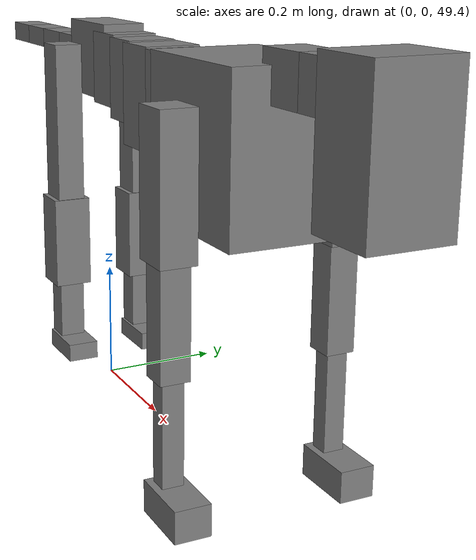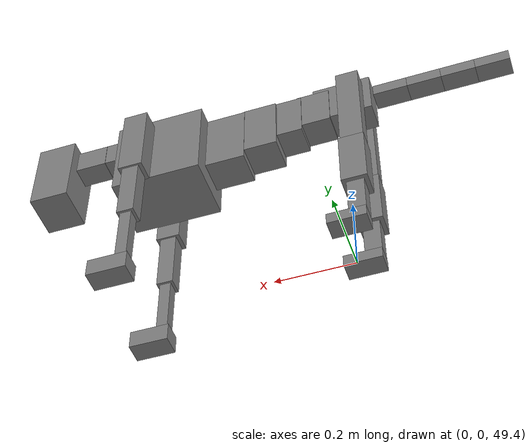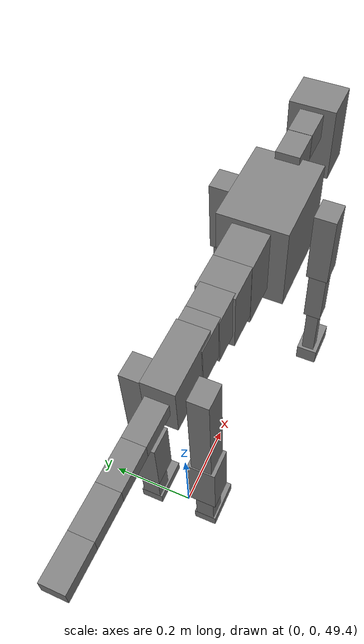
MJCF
<mujoco model="dog">

    <default>
        <joint armature="0.02" stiffness="1" damping="0.2" limited="true"/>
        <geom condim="3" friction="1 0.05 0.05" margin="0.01"/>
        <motor ctrllimited="true" ctrlrange="-1.0 1.0" forcelimited="true" gear="50"/>
    </default>

    <compiler inertiafromgeom="true" angle="radian"/>

    <option timestep="0.016" iterations="50" tolerance="1e-10" solver="Newton" jacobian="dense" cone="pyramidal"/>

    <size nconmax="20000" njmax="60000" nstack="5000000"/>
    <visual>
        <map force="0.1" zfar="30"/>
        <rgba haze="0.15 0.25 0.35 1"/>
        <quality shadowsize="2048"/>
        <global offwidth="800" offheight="800"/>
    </visual>

    <asset>
        <texture type="skybox" builtin="gradient" rgb1="0.3 0.5 0.7" rgb2="0 0 0" width="512" height="512"/>
        <texture name="texplane" type="2d" builtin="checker" rgb1=".2 .3 .4" rgb2=".1 0.15 0.2" width="512" height="512"
                 mark="cross" markrgb=".8 .8 .8"/>
        <texture name="texgeom" type="cube" builtin="flat" mark="cross" width="127" height="1278" rgb1="0.8 0.6 0.4"
                 rgb2="0.8 0.6 0.4" markrgb="1 1 1" random="0.01"/>

        <material name="matplane" reflectance="0.3" texture="texplane" texrepeat="1 1" texuniform="true"/>
        <material name="matgeom" texture="texgeom" texuniform="true" rgba="0.8 0.6 .4 1"/>
    </asset>

    <worldbody>
        <geom name="floor" pos="0 0 0" size="0 0 .25" type="plane" material="matplane" condim="3"/>

        <light directional="false" diffuse=".2 .2 .2" specular="0 0 0" pos="0 0 5" dir="0 0 -1" castshadow="false"/>
        <light mode="targetbodycom" target="torso" directional="false" diffuse=".8 .8 .8" specular="0.3 0.3 0.3"
               pos="0 0 4.0" dir="0 0 -1"/>

        <body name="root" pos="0 0 50">
            <freejoint name="root_1"/>
            <geom type="box" pos="0 0 -0.02" size="0.0774  0.0358  0.063" density="2030"/>

            <body name="spine1" pos="0.054 0 0">
                <joint name="spine1_y" axis="0 1 0" range="0 0.7" limited="true"/>
                <geom type="box" pos="0.02375 0 -0.03" size="0.04375  0.0375  0.05985" density="2030"/>

                <body name="spine2" pos="0.0612 0 0">
                    <joint name="spine2_y" axis="0 1 0" range="-0.15 0.15" limited="true"/>
                    <geom type="box" pos="0.03555  0  -0.04" size="0.04055  0.039  0.06615" density="2030"/>

                    <body name="spine3" pos="0.0730 0 0">
                        <joint name="spine3_y" axis="0 1 0" range="-0.15 0.15" limited="true"/>
                        <geom type="box" pos="0.03555  0  -0.057" size="0.04555  0.0445  0.081" density="2030"/>

                        <body name="spine4" pos="0.0780 0 0">
                            <joint name="spine4_y" axis="0 1 0" range="-0.15 0.15" limited="true"/>
                            <geom type="box" pos="0.05265  0  -0.07" size="0.05265  0.045  0.09135" density="2030"/>

                            <body name="torso" pos="0.1082 0 0">
                                <joint name="torso_y" axis="0 1 0" range="-0.15 0.15" limited="true"/>
                                <geom type="box" pos="0.11925  0  -0.085" size="0.11925  0.085  0.11745"
                                      density="2030"/>

                                <body name="neck1" pos="0.2160  0   0.0180">
                                    <joint name="neck1_y" axis="0 1 0" range="-1.2  -1" limited="true"/>
                                    <geom type="box" pos="0.0423  0  0" size="0.0423  0.03  0.036" density="2325"/>

                                    <body name="neck2" pos="0.0853  0  0">
                                        <joint name="neck2_y" axis="0 1 0" range="0.1  0" limited="true"/>
                                        <geom type="box" pos="0.0423  0  0" size="0.0423  0.03  0.036" density="2325"/>

                                        <body name="head" pos="0.0853  0  0">
                                            <joint name="head_y" axis="0 1 0" range="-0.3  -0.2" limited="true"/>
                                            <geom type="box" pos="0.0531  0  -0.055" size="0.0531  0.06  0.1044"
                                                  density="4030"/>

                                        </body>
                                    </body>
                                </body>

                                <body name="front_shoulder" pos="0.156  0   -0.0480">
                                    <joint name="front_shoulder_y" axis="0 1 0" range="-1 1.5" limited="true"/>
                                    <geom type="box" pos="0 0.13 -0.0771" size="0.0319  0.0273  0.1037" density="1158"/>
                                    <geom type="box" pos="0 -0.13 -0.0771" size="0.0319  0.0273  0.1037"
                                          density="1158"/>

                                    <body name="front_elbow" pos="0  0  -0.1541">
                                        <joint name="front_elbow_y" axis="0 1 0" range="-2 0" limited="true"/>
                                        <geom type="box" pos="0 0.13 -0.0953" size="0.0219  0.0224  0.0953"
                                              density="1081"/>
                                        <geom type="box" pos="0 -0.13 -0.0953" size="0.0219  0.0224  0.0953"
                                              density="1081"/>

                                        <body name="front_wrist" pos="0  0  -0.1906">
                                            <joint name="front_wrist_y" axis="0 1 0" range="-0.2 0" limited="true"/>
                                            <geom type="box" pos="0 0.13 -0.0847" size="0.0147  0.0163  0.0978"
                                                  density="1664"/>
                                            <geom type="box" pos="0 -0.13 -0.0847" size="0.0147  0.0163  0.0978"
                                                  density="1664"/>

                                            <body name="front_finger_end" pos="0  0  -0.1694">
                                                <joint name="front_finger_y" axis="0 1 0" range="-0.4 1"
                                                       limited="true"/>
                                                <geom type="box" pos="0.0273  0.13  -0.0090"
                                                      size="0.0501  0.0273  0.0240" density="1515"/>
                                                <geom type="box" pos="0.0273  -0.13  -0.0090"
                                                      size="0.0501  0.0273  0.0240" density="1515"/>

                                            </body>

                                        </body>
                                    </body>
                                </body>

                            </body>
                        </body>
                    </body>
                </body>
            </body>

            <body name="back_hip" pos="-0.03 0 -0.018">
                <joint name="back_hip_y" axis="0 1 0" range="-1.5 0.3" limited="true"/>
                <geom type="box" pos="0 0.07 -0.1315" size="0.0295  0.0232  0.1543" density="1154"/>
                <geom type="box" pos="0 -0.07 -0.1315" size="0.0295  0.0232  0.1543" density="1154"/>

                <body name="back_knee" pos="0  0  -0.2629">
                    <joint name="back_knee_y" axis="0 1 0" range="0 2.8" limited="true"/>
                    <geom type="box" pos="0 0.07 -0.0626" size="0.0322  0.0317  0.0782" density="1227"/>
                    <geom type="box" pos="0 -0.07 -0.0626" size="0.0322  0.0317  0.0782" density="1227"/>

                    <body name="back_ankle" pos="0  0  -0.1252">
                        <joint name="back_ankle_y" axis="0 1 0" range="-2.2 0" limited="true"/>
                        <geom type="box" pos="0 0.07 -0.0645" size="0.0215  0.0215  0.0758" density="1284"/>
                        <geom type="box" pos="0 -0.07 -0.0645" size="0.0215  0.0215  0.0758" density="1284"/>

                        <body name="back_toe_end" pos="0  0  -0.1290">
                            <joint name="back_toe_y" axis="0 1 0" range="-0.4 1" limited="true"/>
                            <geom type="box" pos="0.0261  0.07  -0.0002" size="0.0479  0.0261  0.0152" density="1515"/>
                            <geom type="box" pos="0.0261  -0.07  -0.0002" size="0.0479  0.0261  0.0152" density="1515"/>

                        </body>
                    </body>
                </body>
            </body>

            <body name="tail1" pos="-0.074 0 -0.006">
                <joint name="tail1_y" axis="0 1 0" range="-0.2 0.2" limited="true"/>
                <geom type="box" pos="-0.0536  0  0" size="0.045  0.025  0.0175" density="1587"/>

                <body name="tail2" pos="-0.09 0 0">
                    <joint name="tail2_y" axis="0 1 0" range="-0.2 0.2" limited="true"/>
                    <geom type="box" pos="-0.0536  0  0" size="0.045  0.025  0.0175" density="1587"/>

                    <body name="tail3" pos="-0.09 0 0">
                        <joint name="tail3_y" axis="0 1 0" range="-0.2 0.2" limited="true"/>
                        <geom type="box" pos="-0.0536  0  0" size="0.045  0.025  0.0175" density="1587"/>

                        <body name="tail4" pos="-0.09 0 0">
                            <joint name="tail4_y" axis="0 1 0" range="-0.2 0.2" limited="true"/>
                            <geom type="box" pos="-0.0536  0  0" size="0.045  0.025  0.0175" density="1587"/>

                        </body>
                    </body>
                </body>
            </body>
        </body>
    </worldbody>

    <actuator>
        <motor joint="spine1_y" forcerange="-150 150     "/>
        <motor joint="spine2_y" forcerange="-150 150     "/>
        <motor joint="spine3_y" forcerange="-150 150     "/>
        <motor joint="spine4_y" forcerange="-150 150     "/>
        <motor joint="torso_y" forcerange="-150 150     "/>
        <motor joint="neck1_y" forcerange="-100 100       "/>
        <motor joint="neck2_y" forcerange="-100 100       "/>
        <motor joint="head_y" forcerange="-150 150       "/>
        <motor joint="front_shoulder_y" forcerange="-129.83 151.86"/>
        <motor joint="front_elbow_y" forcerange="-127.41 135.63"/>
        <motor joint="front_wrist_y" forcerange="-59.29 71.07"/>
        <motor joint="front_finger_y" forcerange="-71.13 34.49"/>
        <motor joint="back_hip_y" forcerange="-286.40 222.46"/>
        <motor joint="back_knee_y" forcerange="-327.38 334.22"/>
        <motor joint="back_angle_y" forcerange="-77.90 165.78"/>
        <motor joint="back_toe_y" forcerange="-23.95 105.13"/>
        <motor joint="tail1_y" forcerange="-50 50     "/>
        <motor joint="tail2_y" forcerange="-50 50     "/>
        <motor joint="tail3_y" forcerange="-50 50     "/>
        <motor joint="tail4_y" forcerange="-50 50     "/>
    </actuator>
</mujoco>
